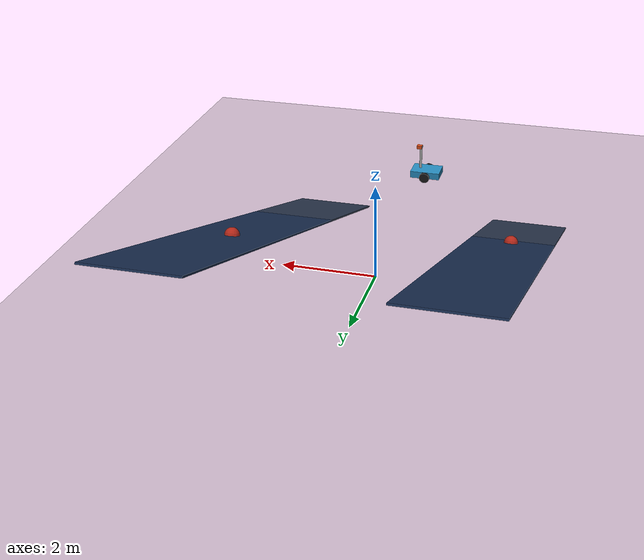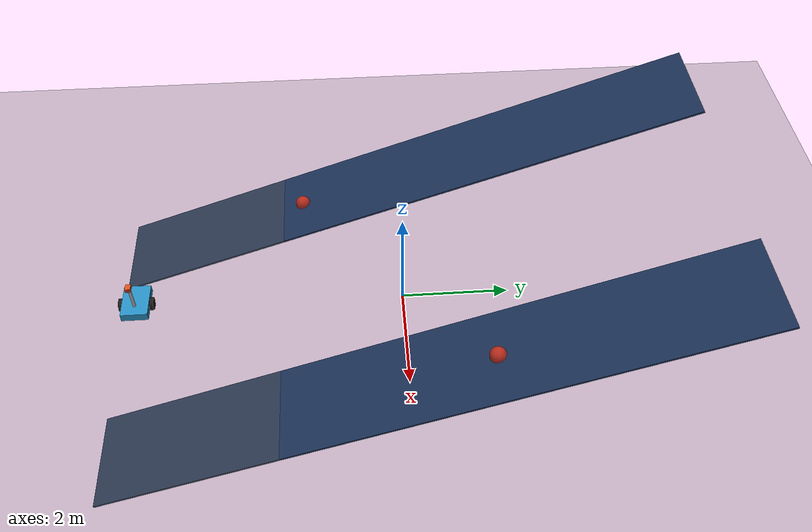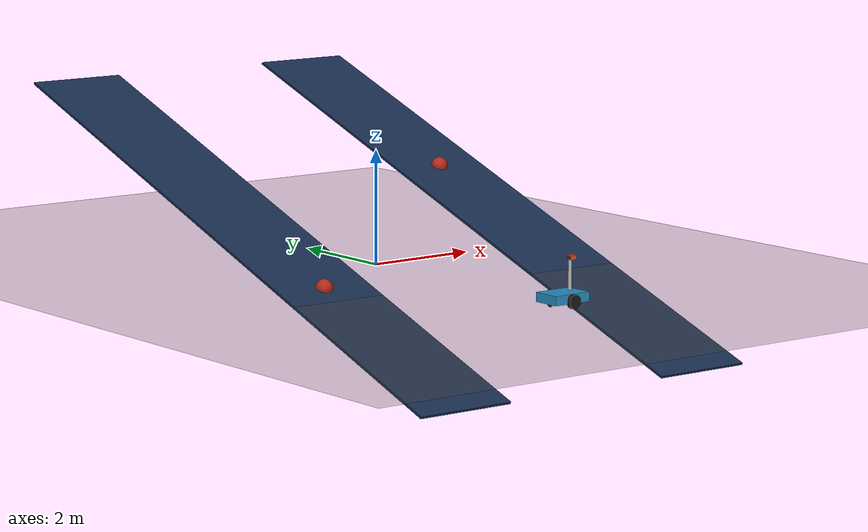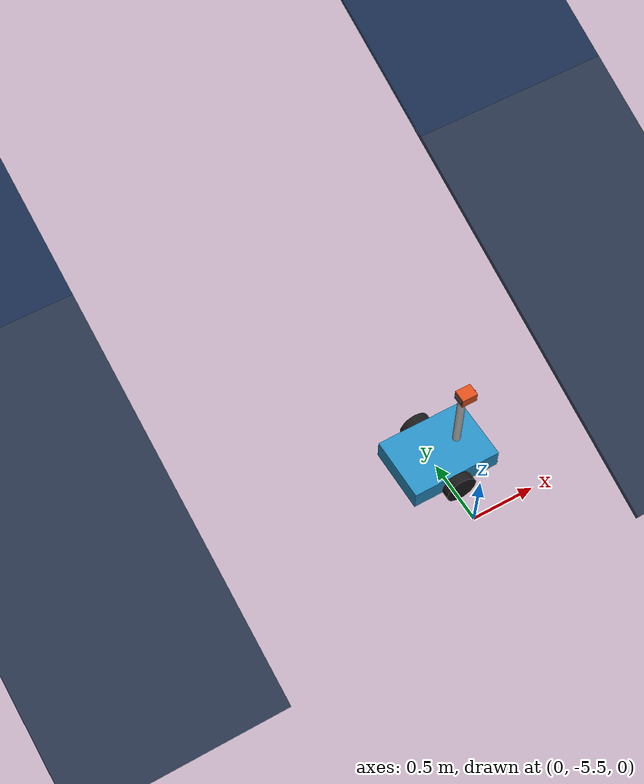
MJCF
<mujoco model="solar_defect_amr">
  <compiler angle="radian" coordinate="local"/>
  <option gravity="0 0 -9.81" timestep="0.002" solver="Newton" iterations="40"/>

  <default>
    <geom condim="4" friction="1.2 0.05 0.002" solref="0.005 1.0" solimp="0.9 0.95 0.001 0.5 2"/>
    <motor ctrllimited="true"/>
  </default>

  <worldbody>
    <!-- Ground Base Plane -->
    <geom name="floor" type="plane" size="20 20 0.1" rgba="0.32 0.30 0.28 1"/>
    <light directional="true" pos="0 0 15" dir="0 0 -1" castshadow="false"/>

    <!-- Photovoltaic Panel Row 1 (East Row) -->
    <body name="pv_row_east" pos="2.5 0 0.8" euler="0.349066 0 0">
      <geom name="pv_glass_east" type="box" size="0.9 6.0 0.02" rgba="0.1 0.18 0.32 0.9" friction="0.4 0.005 0.0001" mass="120.0"/>
      <!-- Simulated Defective Hotspot Module on East String -->
      <site name="hotspot_defect_east" pos="0 1.5 0.03" size="0.15 0.15 0.01" rgba="0.9 0.2 0.1 0.8"/>
    </body>

    <!-- Photovoltaic Panel Row 2 (West Row) -->
    <body name="pv_row_west" pos="-2.5 0 0.8" euler="0.349066 0 0">
      <geom name="pv_glass_west" type="box" size="0.9 6.0 0.02" rgba="0.1 0.18 0.32 0.9" friction="0.4 0.005 0.0001" mass="120.0"/>
      <site name="hotspot_defect_west" pos="0 -2.0 0.03" size="0.15 0.15 0.01" rgba="0.9 0.2 0.1 0.8"/>
    </body>

    <!-- AUTONOMOUS SOLAR INSPECTION AMR (Differential Drive + Sensor Mast)   -->
    <body name="amr_chassis" pos="0 -5.0 0.18">
      <freejoint name="amr_root"/>
      <geom name="chassis_geom" type="box" size="0.35 0.25 0.08" rgba="0.15 0.55 0.75 1" mass="18.0"/>
      <site name="amr_imu" pos="0 0 0.04"/>

      <!-- Left Drive Wheel -->
      <body name="wheel_left" pos="0 0.28 -0.04">
        <joint name="wheel_left_joint" type="hinge" axis="0 1 0" damping="0.1"/>
        <geom name="wheel_left_geom" type="cylinder" size="0.12 0.04" zaxis="0 1 0" rgba="0.1 0.1 0.1 1" mass="2.0"/>
      </body>

      <!-- Right Drive Wheel -->
      <body name="wheel_right" pos="0 -0.28 -0.04">
        <joint name="wheel_right_joint" type="hinge" axis="0 1 0" damping="0.1"/>
        <geom name="wheel_right_geom" type="cylinder" size="0.12 0.04" zaxis="0 1 0" rgba="0.1 0.1 0.1 1" mass="2.0"/>
      </body>

      <!-- Front Passive Caster -->
      <body name="caster_front" pos="0.26 0 -0.09">
        <joint name="caster_front_joint" type="ball" damping="0.01"/>
        <geom name="caster_front_geom" type="sphere" size="0.05" rgba="0.2 0.2 0.2 1" mass="0.8"/>
      </body>

      <!-- Rear Passive Caster -->
      <body name="caster_rear" pos="-0.26 0 -0.09">
        <joint name="caster_rear_joint" type="ball" damping="0.01"/>
        <geom name="caster_rear_geom" type="sphere" size="0.05" rgba="0.2 0.2 0.2 1" mass="0.8"/>
      </body>

      <!-- Sensor Mast with Pan-Tilt Thermal & Optical Camera -->
      <body name="sensor_mast" pos="0.15 0 0.35">
        <geom name="mast_tube" type="cylinder" size="0.03 0.25" rgba="0.7 0.7 0.7 1" mass="1.5"/>
        <body name="gimbal_pan" pos="0 0 0.28">
          <joint name="pan_joint" type="hinge" axis="0 0 1" range="-1.57 1.57"/>
          <geom name="gimbal_bracket" type="box" size="0.04 0.04 0.02" rgba="0.2 0.2 0.2 1" mass="0.4"/>
          <body name="gimbal_tilt" pos="0.03 0 0">
            <joint name="tilt_joint" type="hinge" axis="0 1 0" range="-0.785 0.785"/>
            <geom name="camera_housing" type="box" size="0.06 0.05 0.04" rgba="0.85 0.3 0.1 1" mass="0.6"/>
            <!-- Thermal Radiometric Camera Sensor Site -->
            <camera name="thermal_camera" pos="0.06 0 0" euler="1.570796 0 1.570796" fovy="45"/>
            <site name="thermal_optical_lens" pos="0.06 0 0" size="0.02" rgba="1 0 0 1"/>
          </body>
        </body>
      </body>

      <!-- LiDAR / Obstacle Rangefinder Sites -->
      <site name="lidar_front" pos="0.36 0 0.02"/>
      <site name="bumper_fl" pos="0.35 0.25 -0.04"/>
      <site name="bumper_fr" pos="0.35 -0.25 -0.04"/>
    </body>
  </worldbody>

  <actuator>
    <motor name="motor_wheel_left" joint="wheel_left_joint" ctrlrange="-18 18"/>
    <motor name="motor_wheel_right" joint="wheel_right_joint" ctrlrange="-18 18"/>
    <motor name="motor_pan" joint="pan_joint" ctrlrange="-3 3"/>
    <motor name="motor_tilt" joint="tilt_joint" ctrlrange="-3 3"/>
  </actuator>
</mujoco>
